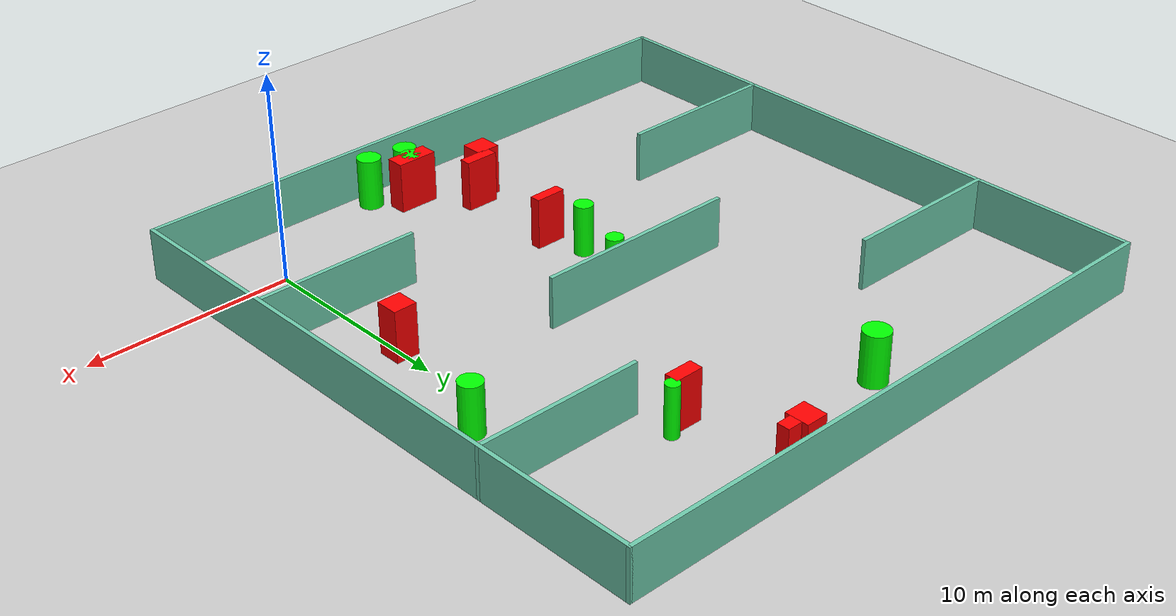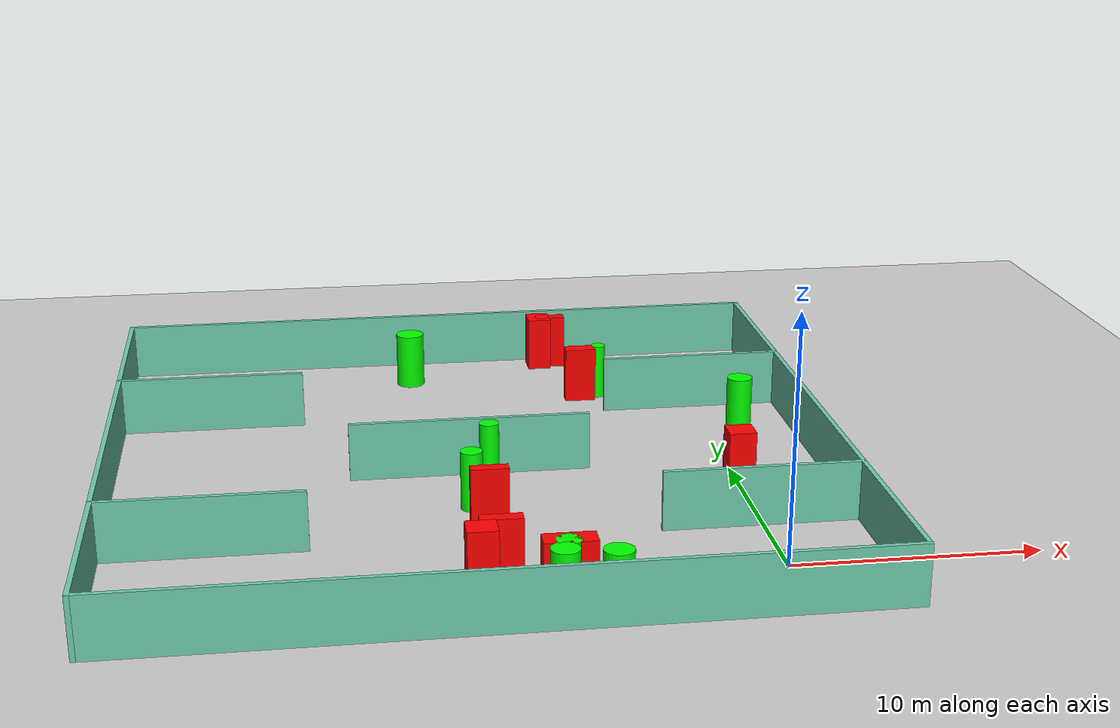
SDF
<sdf version="1.7">
 <world name="default">
  <light name="sun" type="directional">
   <pose>0 0 10 0 -0 0</pose>
   <diffuse>0.8 0.8 0.8 1</diffuse>
   <specular>0.2 0.2 0.2 1</specular>
   <attenuation>
    <range>1000</range>
    <constant>0.9</constant>
    <linear>0.01</linear>
    <quadratic>0.001</quadratic>
   </attenuation>
   <direction>-0.5 0.1 -0.9</direction>
   <spot><inner_angle>0</inner_angle><outer_angle>0</outer_angle><falloff>0</falloff></spot>
  </light>
  <model name="ground_plane">
   <static>1</static>
   <link name="link">
    <collision name="collision">
     <geometry><plane><normal>0 0 1</normal><size>100 100</size></plane></geometry>
     <surface>
      <contact><collide_bitmask>65535</collide_bitmask></contact>
      <friction><ode><mu>100</mu><mu2>50</mu2></ode></friction>
     </surface>
    </collision>
    <visual name="visual">
     <cast_shadows>0</cast_shadows>
     <geometry><plane><normal>0 0 1</normal><size>100 100</size></plane></geometry>
     <material>
      <script><uri>file://media/materials/scripts/gazebo.material</uri><name>Gazebo/Grey</name></script>
     </material>
    </visual>
   </link>
  </model>
  <gravity>0 0 -9.8</gravity>
  <magnetic_field>6e-06 2.3e-05 -4.2e-05</magnetic_field>
  <atmosphere type="adiabatic"/>
  <physics type="ode">
   <max_step_size>0.001</max_step_size>
   <real_time_factor>1</real_time_factor>
   <real_time_update_rate>1000</real_time_update_rate>
  </physics>
  <scene><ambient>0.4 0.4 0.4 1</ambient><background>0.7 0.7 0.7 1</background><shadows>1</shadows></scene>
  <spherical_coordinates>
   <surface_model>EARTH_WGS84</surface_model>
   <latitude_deg>0</latitude_deg>
   <longitude_deg>0</longitude_deg>
   <elevation>0</elevation>
   <heading_deg>0</heading_deg>
  </spherical_coordinates>
  <model name="my_base_walls">
   <link name="Wall_10">
    <collision name="Wall_10_Collision">
     <geometry><box><size>8.2 0.2 2.5</size></box></geometry>
     <pose>0 0 1.25 0 -0 0</pose>
    </collision>
    <visual name="Wall_10_Visual">
     <pose>0 0 1.25 0 -0 0</pose>
     <geometry><box><size>8.2 0.2 2.5</size></box></geometry>
     <material>
      <script><uri>file://media/materials/scripts/gazebo.material</uri><name>Gazebo/Grey</name></script>
      <ambient>0.435294 0.796078 0.67451 1</ambient>
     </material>
     <meta><layer>0</layer></meta>
    </visual>
    <pose>-11 -7 0 0 -0 0</pose>
   </link>
   <link name="Wall_12">
    <collision name="Wall_12_Collision">
     <geometry><box><size>8.2 0.2 2.5</size></box></geometry>
     <pose>0 0 1.25 0 -0 0</pose>
    </collision>
    <visual name="Wall_12_Visual">
     <pose>0 0 1.25 0 -0 0</pose>
     <geometry><box><size>8.2 0.2 2.5</size></box></geometry>
     <material>
      <script><uri>file://media/materials/scripts/gazebo.material</uri><name>Gazebo/Grey</name></script>
      <ambient>0.435294 0.796078 0.67451 1</ambient>
     </material>
     <meta><layer>0</layer></meta>
    </visual>
    <pose>-11 7 0 0 -0 0</pose>
   </link>
   <link name="Wall_14">
    <collision name="Wall_14_Collision">
     <geometry><box><size>8.2 0.2 2.5</size></box></geometry>
     <pose>0 0 1.25 0 -0 0</pose>
    </collision>
    <visual name="Wall_14_Visual">
     <pose>0 0 1.25 0 -0 0</pose>
     <geometry><box><size>8.2 0.2 2.5</size></box></geometry>
     <material>
      <script><uri>file://media/materials/scripts/gazebo.material</uri><name>Gazebo/Grey</name></script>
      <ambient>0.435294 0.796078 0.67451 1</ambient>
     </material>
     <meta><layer>0</layer></meta>
    </visual>
    <pose>11 7 0 0 -0 3.14159</pose>
   </link>
   <link name="Wall_16">
    <collision name="Wall_16_Collision">
     <geometry><box><size>10.2 0.2 2.5</size></box></geometry>
     <pose>0 0 1.25 0 -0 0</pose>
    </collision>
    <visual name="Wall_16_Visual">
     <pose>0 0 1.25 0 -0 0</pose>
     <geometry><box><size>10.2 0.2 2.5</size></box></geometry>
     <material>
      <script><uri>file://media/materials/scripts/gazebo.material</uri><name>Gazebo/Grey</name></script>
      <ambient>0.435294 0.796078 0.67451 1</ambient>
     </material>
     <meta><layer>0</layer></meta>
    </visual>
    <pose>0 0 0 0 -0 3.14159</pose>
   </link>
   <link name="Wall_2">
    <collision name="Wall_2_Collision">
     <geometry><box><size>30.2 0.2 2.5</size></box></geometry>
     <pose>0 0 1.25 0 -0 0</pose>
    </collision>
    <visual name="Wall_2_Visual">
     <pose>0 0 1.25 0 -0 0</pose>
     <geometry><box><size>30.2 0.2 2.5</size></box></geometry>
     <material>
      <script><uri>file://media/materials/scripts/gazebo.material</uri><name>Gazebo/Grey</name></script>
      <ambient>0.435294 0.796078 0.67451 1</ambient>
     </material>
     <meta><layer>0</layer></meta>
    </visual>
    <pose>0 -15 0 0 -0 3.14159</pose>
   </link>
   <link name="Wall_3">
    <collision name="Wall_3_Collision">
     <geometry><box><size>30.2 0.2 2.5</size></box></geometry>
     <pose>0 0 1.25 0 -0 0</pose>
    </collision>
    <visual name="Wall_3_Visual">
     <pose>0 0 1.25 0 -0 0</pose>
     <geometry><box><size>30.2 0.2 2.5</size></box></geometry>
     <material>
      <script><uri>file://media/materials/scripts/gazebo.material</uri><name>Gazebo/Grey</name></script>
      <ambient>0.435294 0.796078 0.67451 1</ambient>
     </material>
     <meta><layer>0</layer></meta>
    </visual>
    <pose>-15 0 0 0 -0 1.5708</pose>
   </link>
   <link name="Wall_4">
    <collision name="Wall_4_Collision">
     <geometry><box><size>30.2 0.2 2.5</size></box></geometry>
     <pose>0 0 1.25 0 -0 0</pose>
    </collision>
    <visual name="Wall_4_Visual">
     <pose>0 0 1.25 0 -0 0</pose>
     <geometry><box><size>30.2 0.2 2.5</size></box></geometry>
     <material>
      <script><uri>file://media/materials/scripts/gazebo.material</uri><name>Gazebo/Grey</name></script>
      <ambient>0.435294 0.796078 0.67451 1</ambient>
     </material>
     <meta><layer>0</layer></meta>
    </visual>
    <pose>0 15 0 0 -0 0</pose>
   </link>
   <link name="Wall_6">
    <collision name="Wall_6_Collision">
     <geometry><box><size>30.2 0.2 2.5</size></box></geometry>
     <pose>0 0 1.25 0 -0 0</pose>
    </collision>
    <visual name="Wall_6_Visual">
     <pose>0 0 1.25 0 -0 0</pose>
     <geometry><box><size>30.2 0.2 2.5</size></box></geometry>
     <material>
      <script><uri>file://media/materials/scripts/gazebo.material</uri><name>Gazebo/Grey</name></script>
      <ambient>0.435294 0.796078 0.67451 1</ambient>
     </material>
     <meta><layer>0</layer></meta>
    </visual>
    <pose>15 0 0 0 -0 1.5708</pose>
   </link>
   <link name="Wall_8">
    <collision name="Wall_8_Collision">
     <geometry><box><size>8.2 0.2 2.5</size></box></geometry>
     <pose>0 0 1.25 0 -0 0</pose>
    </collision>
    <visual name="Wall_8_Visual">
     <pose>0 0 1.25 0 -0 0</pose>
     <geometry><box><size>8.2 0.2 2.5</size></box></geometry>
     <material>
      <script><uri>file://media/materials/scripts/gazebo.material</uri><name>Gazebo/Grey</name></script>
      <ambient>0.435294 0.796078 0.67451 1</ambient>
     </material>
     <meta><layer>0</layer></meta>
    </visual>
    <pose>11 -7 0 0 -0 3.14159</pose>
   </link>
   <static>1</static>
   <pose>-11 11 0 0 -0 0</pose>
  </model>
  <model name="cylinder1">
   <static>1</static>
   <link name="link">
    <inertial>
     <mass>1</mass>
     <inertia><ixx>0.5</ixx><ixy>0</ixy><ixz>0</ixz><iyy>0.5</iyy><iyz>0</iyz><izz>1</izz></inertia>
    </inertial>
    <collision name="collision">
     <geometry><cylinder><radius>0.5807819319376804</radius><length>2.5</length></cylinder></geometry>
    </collision>
    <visual name="visual">
     <geometry><cylinder><radius>0.5807819319376804</radius><length>2.5</length></cylinder></geometry>
     <material>
      <ambient>0 1 0 1</ambient>
      <diffuse>0 1 0 1</diffuse>
      <specular>0.1 0.1 0.1 1</specular>
      <emissive>0 0 0 0</emissive>
     </material>
    </visual>
   </link>
   <pose>-7.0590486747691354 -2.975514674259348 1.25 0 0 0</pose>
  </model>
  <model name="cylinder2">
   <static>1</static>
   <link name="link">
    <inertial>
     <mass>1</mass>
     <inertia><ixx>0.5</ixx><ixy>0</ixy><ixz>0</ixz><iyy>0.5</iyy><iyz>0</iyz><izz>1</izz></inertia>
    </inertial>
    <collision name="collision">
     <geometry><cylinder><radius>0.4937930132428171</radius><length>2.5</length></cylinder></geometry>
    </collision>
    <visual name="visual">
     <geometry><cylinder><radius>0.4937930132428171</radius><length>2.5</length></cylinder></geometry>
     <material>
      <ambient>0 1 0 1</ambient>
      <diffuse>0 1 0 1</diffuse>
      <specular>0.1 0.1 0.1 1</specular>
      <emissive>0 0 0 0</emissive>
     </material>
    </visual>
   </link>
   <pose>-8.694541274879985 -1.8914524093940193 1.25 0 0 0</pose>
  </model>
  <model name="cylinder3">
   <static>1</static>
   <link name="link">
    <inertial>
     <mass>1</mass>
     <inertia><ixx>0.5</ixx><ixy>0</ixy><ixz>0</ixz><iyy>0.5</iyy><iyz>0</iyz><izz>1</izz></inertia>
    </inertial>
    <collision name="collision">
     <geometry><cylinder><radius>0.6427198675591516</radius><length>2.5</length></cylinder></geometry>
    </collision>
    <visual name="visual">
     <geometry><cylinder><radius>0.6427198675591516</radius><length>2.5</length></cylinder></geometry>
     <material>
      <ambient>0 1 0 1</ambient>
      <diffuse>0 1 0 1</diffuse>
      <specular>0.1 0.1 0.1 1</specular>
      <emissive>0 0 0 0</emissive>
     </material>
    </visual>
   </link>
   <pose>-12.711954071980816 23.02579298799255 1.25 0 0 0</pose>
  </model>
  <model name="cylinder4">
   <static>1</static>
   <link name="link">
    <inertial>
     <mass>1</mass>
     <inertia><ixx>0.5</ixx><ixy>0</ixy><ixz>0</ixz><iyy>0.5</iyy><iyz>0</iyz><izz>1</izz></inertia>
    </inertial>
    <collision name="collision">
     <geometry><cylinder><radius>0.5580462340972892</radius><length>2.5</length></cylinder></geometry>
    </collision>
    <visual name="visual">
     <geometry><cylinder><radius>0.5580462340972892</radius><length>2.5</length></cylinder></geometry>
     <material>
      <ambient>0 1 0 1</ambient>
      <diffuse>0 1 0 1</diffuse>
      <specular>0.1 0.1 0.1 1</specular>
      <emissive>0 0 0 0</emissive>
     </material>
    </visual>
   </link>
   <pose>-8.926119650598746 -2.6441580342537825 1.25 0 0 0</pose>
  </model>
  <model name="cylinder5">
   <static>1</static>
   <link name="link">
    <inertial>
     <mass>1</mass>
     <inertia><ixx>0.5</ixx><ixy>0</ixy><ixz>0</ixz><iyy>0.5</iyy><iyz>0</iyz><izz>1</izz></inertia>
    </inertial>
    <collision name="collision">
     <geometry><cylinder><radius>0.5564907910400807</radius><length>2.5</length></cylinder></geometry>
    </collision>
    <visual name="visual">
     <geometry><cylinder><radius>0.5564907910400807</radius><length>2.5</length></cylinder></geometry>
     <material>
      <ambient>0 1 0 1</ambient>
      <diffuse>0 1 0 1</diffuse>
      <specular>0.1 0.1 0.1 1</specular>
      <emissive>0 0 0 0</emissive>
     </material>
    </visual>
   </link>
   <pose>1.4981351521281603 14.573901647495624 1.25 0 0 0</pose>
  </model>
  <model name="cylinder6">
   <static>1</static>
   <link name="link">
    <inertial>
     <mass>1</mass>
     <inertia><ixx>0.5</ixx><ixy>0</ixy><ixz>0</ixz><iyy>0.5</iyy><iyz>0</iyz><izz>1</izz></inertia>
    </inertial>
    <collision name="collision">
     <geometry><cylinder><radius>0.41563715963711</radius><length>2.5</length></cylinder></geometry>
    </collision>
    <visual name="visual">
     <geometry><cylinder><radius>0.41563715963711</radius><length>2.5</length></cylinder></geometry>
     <material>
      <ambient>0 1 0 1</ambient>
      <diffuse>0 1 0 1</diffuse>
      <specular>0.1 0.1 0.1 1</specular>
      <emissive>0 0 0 0</emissive>
     </material>
    </visual>
   </link>
   <pose>-10.255633208558793 10.339033564621484 1.25 0 0 0</pose>
  </model>
  <model name="cylinder7">
   <static>1</static>
   <link name="link">
    <inertial>
     <mass>1</mass>
     <inertia><ixx>0.5</ixx><ixy>0</ixy><ixz>0</ixz><iyy>0.5</iyy><iyz>0</iyz><izz>1</izz></inertia>
    </inertial>
    <collision name="collision">
     <geometry><cylinder><radius>0.4577762383422148</radius><length>2.5</length></cylinder></geometry>
    </collision>
    <visual name="visual">
     <geometry><cylinder><radius>0.4577762383422148</radius><length>2.5</length></cylinder></geometry>
     <material>
      <ambient>0 1 0 1</ambient>
      <diffuse>0 1 0 1</diffuse>
      <specular>0.1 0.1 0.1 1</specular>
      <emissive>0 0 0 0</emissive>
     </material>
    </visual>
   </link>
   <pose>-11.297898034732901 7.245239220565171 1.25 0 0 0</pose>
  </model>
  <model name="cylinder8">
   <static>1</static>
   <link name="link">
    <inertial>
     <mass>1</mass>
     <inertia><ixx>0.5</ixx><ixy>0</ixy><ixz>0</ixz><iyy>0.5</iyy><iyz>0</iyz><izz>1</izz></inertia>
    </inertial>
    <collision name="collision">
     <geometry><cylinder><radius>0.33163130124982326</radius><length>2.5</length></cylinder></geometry>
    </collision>
    <visual name="visual">
     <geometry><cylinder><radius>0.33163130124982326</radius><length>2.5</length></cylinder></geometry>
     <material>
      <ambient>0 1 0 1</ambient>
      <diffuse>0 1 0 1</diffuse>
      <specular>0.1 0.1 0.1 1</specular>
      <emissive>0 0 0 0</emissive>
     </material>
    </visual>
   </link>
   <pose>-4.053304707620027 20.05339614500155 1.25 0 0 0</pose>
  </model>
  <model name="box1">
   <static>1</static>
   <link name="link">
    <inertial>
     <mass>1</mass>
     <inertia><ixx>0.083</ixx><ixy>0</ixy><ixz>0</ixz><iyy>0.083</iyy><iyz>0</iyz><izz>0.083</izz></inertia>
    </inertial>
    <collision name="collision">
     <geometry><box><size>1.6545744413898271 0.5600130171389223 2.5</size></box></geometry>
    </collision>
    <visual name="visual">
     <geometry><box><size>1.6545744413898271 0.5600130171389223 2.5</size></box></geometry>
     <material>
      <ambient>1 0 0 1</ambient>
      <diffuse>1 0 0 1</diffuse>
      <specular>0.1 0.1 0.1 1</specular>
      <emissive>0 0 0 0</emissive>
     </material>
    </visual>
    <sensor name="my_contact" type="contact">
     <contact><collision>box_collision</collision><topic>__default_topic__</topic></contact>
    </sensor>
   </link>
   <pose>-10.860733393230486 0.4644999845350406 1.25 0 0 0</pose>
  </model>
  <model name="box2">
   <static>1</static>
   <link name="link">
    <inertial>
     <mass>1</mass>
     <inertia><ixx>0.083</ixx><ixy>0</ixy><ixz>0</ixz><iyy>0.083</iyy><iyz>0</iyz><izz>0.083</izz></inertia>
    </inertial>
    <collision name="collision">
     <geometry><box><size>1.0822438527255582 1.1642824708431976 2.5</size></box></geometry>
    </collision>
    <visual name="visual">
     <geometry><box><size>1.0822438527255582 1.1642824708431976 2.5</size></box></geometry>
     <material>
      <ambient>1 0 0 1</ambient>
      <diffuse>1 0 0 1</diffuse>
      <specular>0.1 0.1 0.1 1</specular>
      <emissive>0 0 0 0</emissive>
     </material>
    </visual>
    <sensor name="my_contact" type="contact">
     <contact><collision>box_collision</collision><topic>__default_topic__</topic></contact>
    </sensor>
   </link>
   <pose>-6.251017480488226 24.92561138833206 1.25 0 0 0</pose>
  </model>
  <model name="box3">
   <static>1</static>
   <link name="link">
    <inertial>
     <mass>1</mass>
     <inertia><ixx>0.083</ixx><ixy>0</ixy><ixz>0</ixz><iyy>0.083</iyy><iyz>0</iyz><izz>0.083</izz></inertia>
    </inertial>
    <collision name="collision">
     <geometry><box><size>1.1847704794635758 1.1041084724414514 2.5</size></box></geometry>
    </collision>
    <visual name="visual">
     <geometry><box><size>1.1847704794635758 1.1041084724414514 2.5</size></box></geometry>
     <material>
      <ambient>1 0 0 1</ambient>
      <diffuse>1 0 0 1</diffuse>
      <specular>0.1 0.1 0.1 1</specular>
      <emissive>0 0 0 0</emissive>
     </material>
    </visual>
    <sensor name="my_contact" type="contact">
     <contact><collision>box_collision</collision><topic>__default_topic__</topic></contact>
    </sensor>
   </link>
   <pose>-11.668029143889905 -0.29599054905680244 1.25 0 0 0</pose>
  </model>
  <model name="box4">
   <static>1</static>
   <link name="link">
    <inertial>
     <mass>1</mass>
     <inertia><ixx>0.083</ixx><ixy>0</ixy><ixz>0</ixz><iyy>0.083</iyy><iyz>0</iyz><izz>0.083</izz></inertia>
    </inertial>
    <collision name="collision">
     <geometry><box><size>1.5399515789459355 0.5084251553848416 2.5</size></box></geometry>
    </collision>
    <visual name="visual">
     <geometry><box><size>1.5399515789459355 0.5084251553848416 2.5</size></box></geometry>
     <material>
      <ambient>1 0 0 1</ambient>
      <diffuse>1 0 0 1</diffuse>
      <specular>0.1 0.1 0.1 1</specular>
      <emissive>0 0 0 0</emissive>
     </material>
    </visual>
    <sensor name="my_contact" type="contact">
     <contact><collision>box_collision</collision><topic>__default_topic__</topic></contact>
    </sensor>
   </link>
   <pose>-10.773340369534036 5.39812601790244 1.25 0 0 0</pose>
  </model>
  <model name="box5">
   <static>1</static>
   <link name="link">
    <inertial>
     <mass>1</mass>
     <inertia><ixx>0.083</ixx><ixy>0</ixy><ixz>0</ixz><iyy>0.083</iyy><iyz>0</iyz><izz>0.083</izz></inertia>
    </inertial>
    <collision name="collision">
     <geometry><box><size>1.1432648006258939 1.112625441423281 2.5</size></box></geometry>
    </collision>
    <visual name="visual">
     <geometry><box><size>1.1432648006258939 1.112625441423281 2.5</size></box></geometry>
     <material>
      <ambient>1 0 0 1</ambient>
      <diffuse>1 0 0 1</diffuse>
      <specular>0.1 0.1 0.1 1</specular>
      <emissive>0 0 0 0</emissive>
     </material>
    </visual>
    <sensor name="my_contact" type="contact">
     <contact><collision>box_collision</collision><topic>__default_topic__</topic></contact>
    </sensor>
   </link>
   <pose>-0.005444943283688275 8.119430306466558 1.25 0 0 0</pose>
  </model>
  <model name="box6">
   <static>1</static>
   <link name="link">
    <inertial>
     <mass>1</mass>
     <inertia><ixx>0.083</ixx><ixy>0</ixy><ixz>0</ixz><iyy>0.083</iyy><iyz>0</iyz><izz>0.083</izz></inertia>
    </inertial>
    <collision name="collision">
     <geometry><box><size>1.3964061753725447 0.6717710449910193 2.5</size></box></geometry>
    </collision>
    <visual name="visual">
     <geometry><box><size>1.3964061753725447 0.6717710449910193 2.5</size></box></geometry>
     <material>
      <ambient>1 0 0 1</ambient>
      <diffuse>1 0 0 1</diffuse>
      <specular>0.1 0.1 0.1 1</specular>
      <emissive>0 0 0 0</emissive>
     </material>
    </visual>
    <sensor name="my_contact" type="contact">
     <contact><collision>box_collision</collision><topic>__default_topic__</topic></contact>
    </sensor>
   </link>
   <pose>-4.95807117144094 19.762271270303152 1.25 0 0 0</pose>
  </model>
  <model name="box7">
   <static>1</static>
   <link name="link">
    <inertial>
     <mass>1</mass>
     <inertia><ixx>0.083</ixx><ixy>0</ixy><ixz>0</ixz><iyy>0.083</iyy><iyz>0</iyz><izz>0.083</izz></inertia>
    </inertial>
    <collision name="collision">
     <geometry><box><size>1.3910563655705293 0.5958252458189381 2.5</size></box></geometry>
    </collision>
    <visual name="visual">
     <geometry><box><size>1.3910563655705293 0.5958252458189381 2.5</size></box></geometry>
     <material>
      <ambient>1 0 0 1</ambient>
      <diffuse>1 0 0 1</diffuse>
      <specular>0.1 0.1 0.1 1</specular>
      <emissive>0 0 0 0</emissive>
     </material>
    </visual>
    <sensor name="my_contact" type="contact">
     <contact><collision>box_collision</collision><topic>__default_topic__</topic></contact>
    </sensor>
   </link>
   <pose>-5.67700994524856 24.90496783864377 1.25 0 0 0</pose>
  </model>
  <model name="box8">
   <static>1</static>
   <link name="link">
    <inertial>
     <mass>1</mass>
     <inertia><ixx>0.083</ixx><ixy>0</ixy><ixz>0</ixz><iyy>0.083</iyy><iyz>0</iyz><izz>0.083</izz></inertia>
    </inertial>
    <collision name="collision">
     <geometry><box><size>2.0282998886662034 0.8958053969568625 2.5</size></box></geometry>
    </collision>
    <visual name="visual">
     <geometry><box><size>2.0282998886662034 0.8958053969568625 2.5</size></box></geometry>
     <material>
      <ambient>1 0 0 1</ambient>
      <diffuse>1 0 0 1</diffuse>
      <specular>0.1 0.1 0.1 1</specular>
      <emissive>0 0 0 0</emissive>
     </material>
    </visual>
    <sensor name="my_contact" type="contact">
     <contact><collision>box_collision</collision><topic>__default_topic__</topic></contact>
    </sensor>
   </link>
   <pose>-8.629915654228387 -1.7358375908152253 1.25 0 0 0</pose>
  </model>
 </world>
</sdf>
